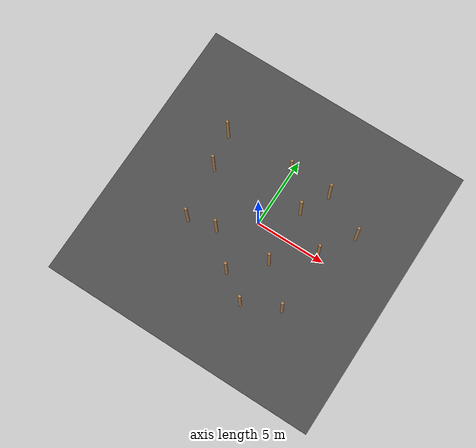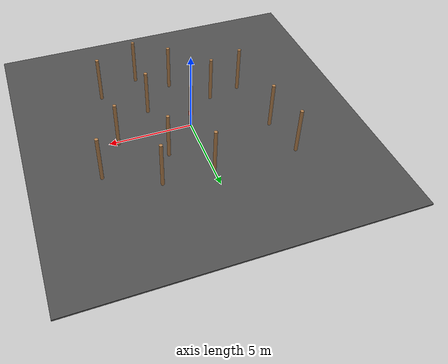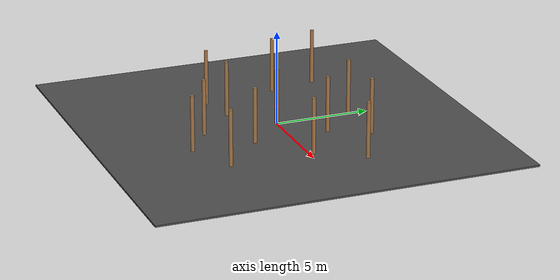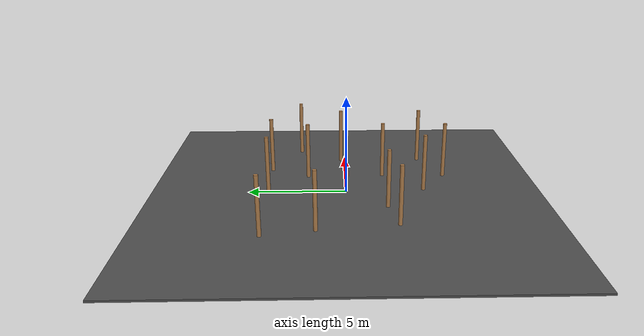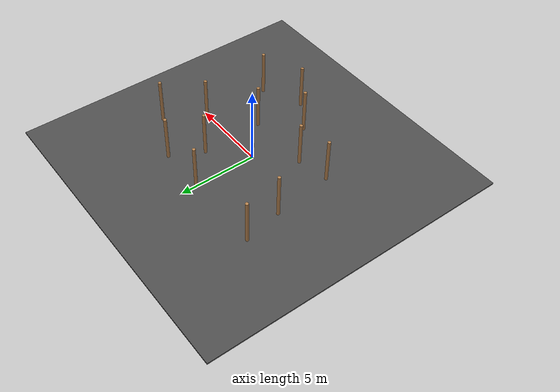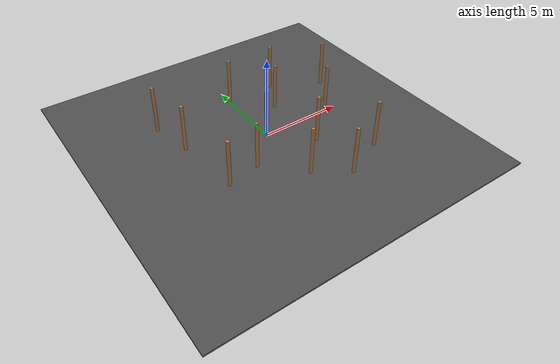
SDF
<?xml version="1.0" ?>
<sdf version='1.4'>
  <world name='default'>

    <physics type='ode'>
      <max_step_size>0.001</max_step_size>
      <real_time_factor>1</real_time_factor>
      <real_time_update_rate>1000</real_time_update_rate>
      <gravity>0 0 -9.8</gravity>
    </physics>

    <spherical_coordinates>
      <surface_model>EARTH_WGS84</surface_model>
      <latitude_deg>0</latitude_deg>
      <longitude_deg>0</longitude_deg>
      <elevation>0</elevation>
      <heading_deg>0</heading_deg>
    </spherical_coordinates>

    <!-- A global light source -->
   <scene>
      <sky>
        <clouds>
          <speed>12</speed>
        </clouds>
      </sky>
   </scene>

   <include>
     <uri>model://sun</uri>
   </include>

   <model name='asphalt_plane'>
     <static>1</static>
     <link name='link'>
       <collision name='collision'>
         <geometry>
           <box>
             <size>20 20 0.1</size>
           </box>
         </geometry>
         <max_contacts>10</max_contacts>
         <surface>
           <contact>
             <ode/>
           </contact>
           <bounce/>
         </surface>
       </collision>
       <visual name='visual'>
         <cast_shadows>0</cast_shadows>
         <geometry>
           <box>
             <size>20 20 0.1</size>
           </box>
         </geometry>
         <material>
           <script>
             <uri>model://asphalt_plane/materials/scripts</uri>
             <uri>model://asphalt_plane/materials/textures</uri>
             <name>vrc/asphalt</name>
           </script>
         </material>
       </visual>
       <self_collide>0</self_collide>
       <kinematic>0</kinematic>
       <gravity>1</gravity>
     </link>
   </model>

    <model name="target_tree" >
      <pose>0 0 0 0 0 0</pose>
      <include>
        <uri>model://tree</uri>
      </include>
    </model>

    <model name="sub_target_tree1" >
      <pose>2 2 0 0 0 0</pose>
      <include>
        <uri>model://tree</uri>
      </include>
    </model>

    <model name="sub_target_tree2" >
      <pose>0 4 0 0 0 0</pose>
      <include>
        <uri>model://tree</uri>
      </include>
    </model>

    <model name="sub_target_tree3" >
      <pose>-2 -2 0 0 0 0</pose>
      <include>
        <uri>model://tree</uri>
      </include>
    </model>

    <model name="sub_target_tree4" >
      <pose>-4 -2.4 0 0 0 0</pose>
      <include>
        <uri>model://tree</uri>
      </include>
    </model>

    <model name="sub_target_tree5" >
      <pose>-4.5 1.5 0 0 0 0</pose>
      <include>
        <uri>model://tree</uri>
      </include>
    </model>

    <model name="sub_target_tree6" >
      <pose>-5 4 0 0 0 0</pose>
      <include>
        <uri>model://tree</uri>
      </include>
    </model>

    <model name="sub_target_tree7" >
      <pose>2.1 -2 0 0 0 0</pose>
      <include>
        <uri>model://tree</uri>
      </include>
    </model>

    <model name="sub_target_tree8" >
      <pose>0.1 -4 0 0 0 0</pose>
      <include>
        <uri>model://tree</uri>
      </include>
    </model>

    <model name="sub_target_tree9" >
      <pose>4.5 0.2 0 0 0 0</pose>
      <include>
        <uri>model://tree</uri>
      </include>
    </model>

    <model name="sub_target_tree10" >
      <pose>3.0 4 0 0 0 0</pose>
      <include>
        <uri>model://tree</uri>
      </include>
    </model>

    <model name="sub_target_tree11" >
      <pose>6 2.5 0 0 0 0</pose>
      <include>
        <uri>model://tree</uri>
      </include>
    </model>

    <model name="sub_target_tree12" >
      <pose>2 -5.3 0 0 0 0</pose>
      <include>
        <uri>model://tree</uri>
      </include>
    </model>

    <model name="sub_target_tree13" >
      <pose>4.5 -4.2 0 0 0 0</pose>
      <include>
        <uri>model://tree</uri>
      </include>
    </model>

    <!-- Please check the spefic rule: http://www.lsse.kyutech.ac.jp/~sociorobo/ja/forestdrone2016r -->
    <model name="red_band">
      <pose>0 0 1.0 0 0 0</pose>
      <static>1</static>
      <link name="band" >
        <pose>0 0 0 0 0 0</pose>
        <inertial>
          <mass>1</mass>
          <inertia>
            <ixx>0.145833</ixx>
            <ixy>0</ixy>
            <ixz>0</ixz>
            <iyy>0.145833</iyy>
            <iyz>0</iyz>
            <izz>0.125</izz>
          </inertia>
          <pose>0 0 0 0 -0 0</pose>
        </inertial>
        <collision name="collision">
          <geometry>
            <cylinder>
              <length>0.3</length>
              <radius>0.11</radius>
            </cylinder>
          </geometry>
        </collision>
        <visual name="visual">
          <geometry>
            <cylinder>
              <length>0.3</length>
              <radius>0.11</radius>
            </cylinder>
          </geometry>
          <material>
            <ambient>1.00 0.0 0.0 1</ambient> <!-- red -->
            <diffuse>1.00 0.38 0.28 1</diffuse>
            <specular>0.1 0.1 0.1 1</specular>
            <emissive>0 0 0 0</emissive>
          </material>
        </visual>
      </link>
    </model>

  </world>
</sdf>

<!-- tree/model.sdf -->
<sdf version="1.4">

  <model name='tree'>
    <static>1</static>
    <link name='trunk'>
      <pose>0 0 1.5 0 -0 0</pose>
      <inertial>
        <mass>1</mass>
        <inertia>
          <ixx>0.145833</ixx>
          <ixy>0</ixy>
          <ixz>0</ixz>
          <iyy>0.145833</iyy>
          <iyz>0</iyz>
          <izz>0.125</izz>
        </inertia>
        <pose>0 0 0 0 -0 0</pose>
      </inertial>
      <self_collide>0</self_collide>
      <kinematic>0</kinematic>
      <gravity>1</gravity>
      <visual name='visual'>
        <pose>0 0 0 0 -0 0</pose>
        <geometry>
          <cylinder>
            <radius>0.1</radius>
            <length>3</length>
          </cylinder>
        </geometry>
        <material>
          <script>
            <uri>file://media/materials/scripts/gazebo.material</uri>
            <name>Gazebo/Wood</name>
          </script>
          <ambient>0.3 0.3 0.3 1</ambient>
          <diffuse>0.7 0.7 0.7 1</diffuse>
          <specular>0.01 0.01 0.01 1</specular>
          <emissive>0 0 0 1</emissive>
          <shader type='vertex'>
            <normal_map>__default__</normal_map>
          </shader>
        </material>
        <cast_shadows>1</cast_shadows>
        <transparency>0</transparency>
      </visual>
      <collision name='collision'>
        <laser_retro>0</laser_retro>
        <max_contacts>10</max_contacts>
        <pose>0 0 0 0 -0 0</pose>
        <geometry>
          <cylinder>
            <radius>0.1</radius>
            <length>3</length>
          </cylinder>
        </geometry>
        <surface>
          <friction>
            <ode>
              <mu>1</mu>
              <mu2>1</mu2>
              <fdir1>0 0 0</fdir1>
              <slip1>0</slip1>
              <slip2>0</slip2>
            </ode>
          </friction>
          <bounce>
            <restitution_coefficient>0</restitution_coefficient>
            <threshold>1e+06</threshold>
          </bounce>
          <contact>
            <collide_without_contact>0</collide_without_contact>
            <collide_without_contact_bitmask>1</collide_without_contact_bitmask>
            <ode>
              <soft_cfm>0</soft_cfm>
              <soft_erp>0.2</soft_erp>
              <kp>1e+13</kp>
              <kd>1</kd>
              <max_vel>0.01</max_vel>
              <min_depth>0</min_depth>
            </ode>
            <bullet>
              <split_impulse>1</split_impulse>
              <split_impulse_penetration_threshold>-0.01</split_impulse_penetration_threshold>
              <soft_cfm>0</soft_cfm>
              <soft_erp>0.2</soft_erp>
              <kp>1e+13</kp>
              <kd>1</kd>
            </bullet>
          </contact>
        </surface>
      </collision>
    </link>
    <allow_auto_disable>1</allow_auto_disable>
  </model>
</sdf>
